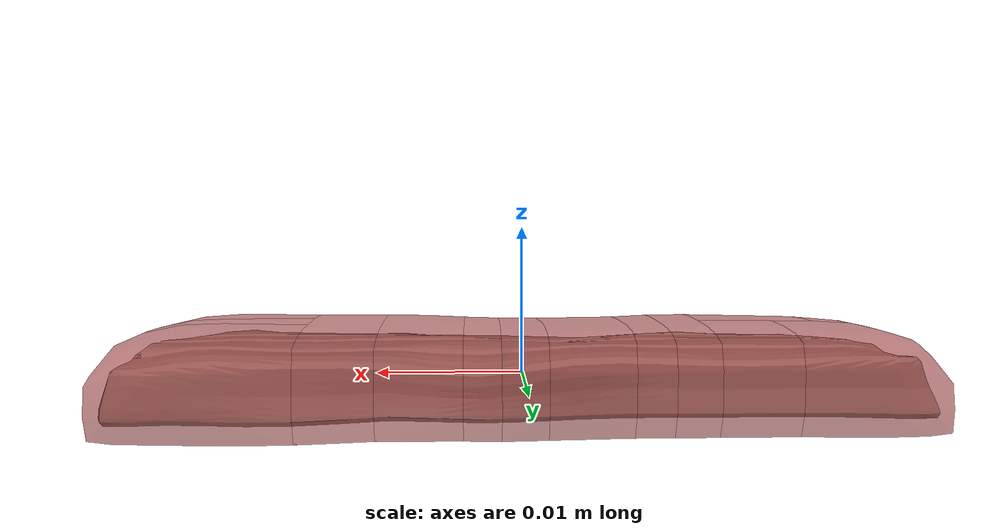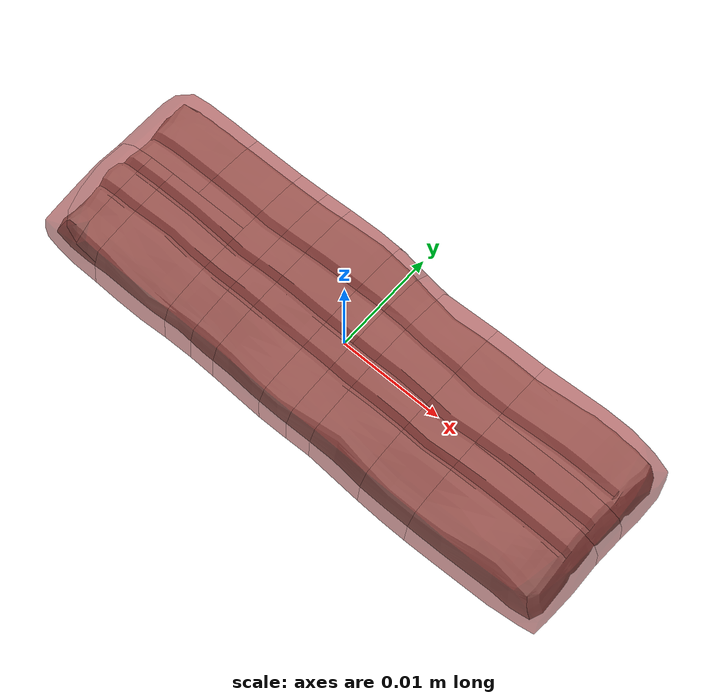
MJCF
<mujoco model="model">
  <compiler angle="radian"/>
  <asset>
    <mesh file="visual/CreamCheese008.obj" name="CreamCheese008_vis"/>
    <texture file="visual/T_BC001.png" name="CreamCheese008_material" type="2d"/>
    <material name="CreamCheese008_material" rgba="1 1 1 1.0" texture="CreamCheese008_material" shininess="-35.000003814697266" specular="0.3103448502657381"/>
    <mesh file="collision/CreamCheese008004.obj" name="CreamCheese008004_mesh"/>
    <mesh file="collision/CreamCheese008007.obj" name="CreamCheese008007_mesh"/>
    <mesh file="collision/CreamCheese008002.obj" name="CreamCheese008002_mesh"/>
    <mesh file="collision/CreamCheese008012.obj" name="CreamCheese008012_mesh"/>
    <mesh file="collision/CreamCheese008011.obj" name="CreamCheese008011_mesh"/>
    <mesh file="collision/CreamCheese008008.obj" name="CreamCheese008008_mesh"/>
    <mesh file="collision/CreamCheese008016.obj" name="CreamCheese008016_mesh"/>
    <mesh file="collision/CreamCheese008014.obj" name="CreamCheese008014_mesh"/>
    <mesh file="collision/CreamCheese008010.obj" name="CreamCheese008010_mesh"/>
    <mesh file="collision/CreamCheese008003.obj" name="CreamCheese008003_mesh"/>
    <mesh file="collision/CreamCheese008001.obj" name="CreamCheese008001_mesh"/>
    <mesh file="collision/CreamCheese008015.obj" name="CreamCheese008015_mesh"/>
    <mesh file="collision/CreamCheese008005.obj" name="CreamCheese008005_mesh"/>
    <mesh file="collision/CreamCheese008009.obj" name="CreamCheese008009_mesh"/>
    <mesh file="collision/CreamCheese008006.obj" name="CreamCheese008006_mesh"/>
    <mesh file="collision/CreamCheese008013.obj" name="CreamCheese008013_mesh"/>
  </asset>
  <default>
    <default class="visual">
      <geom conaffinity="0" contype="0" group="1" type="mesh"/>
    </default>
    <default class="collision">
      <geom group="0" rgba="0.5 0 0 0.5"/>
    </default>
    <default class="spawn">
      <geom group="0" rgba="1 1 1 0.5" contype="0" conaffinity="0"/>
      <site group="0" rgba="1 1 1 0.5"/>
    </default>
    <default class="region">
      <geom group="1" conaffinity="0" contype="0" rgba="0 1 0 0" mass="0"/>
    </default>
  </default>
  <worldbody>
    <body>
      <body name="object">
        <geom mesh="CreamCheese008_vis" type="mesh" solimp="0.998 0.998 0.001" solref="0.001 1" density="100" friction="0.95 0.3 0.1" class="visual" material="CreamCheese008_material"/>
        <geom mesh="CreamCheese008004_mesh" type="mesh" class="collision"/>
        <geom mesh="CreamCheese008007_mesh" type="mesh" class="collision"/>
        <geom mesh="CreamCheese008002_mesh" type="mesh" class="collision"/>
        <geom mesh="CreamCheese008012_mesh" type="mesh" class="collision"/>
        <geom mesh="CreamCheese008011_mesh" type="mesh" class="collision"/>
        <geom mesh="CreamCheese008008_mesh" type="mesh" class="collision"/>
        <geom mesh="CreamCheese008016_mesh" type="mesh" class="collision"/>
        <geom mesh="CreamCheese008014_mesh" type="mesh" class="collision"/>
        <geom mesh="CreamCheese008010_mesh" type="mesh" class="collision"/>
        <geom mesh="CreamCheese008003_mesh" type="mesh" class="collision"/>
        <geom mesh="CreamCheese008001_mesh" type="mesh" class="collision"/>
        <geom mesh="CreamCheese008015_mesh" type="mesh" class="collision"/>
        <geom mesh="CreamCheese008005_mesh" type="mesh" class="collision"/>
        <geom mesh="CreamCheese008009_mesh" type="mesh" class="collision"/>
        <geom mesh="CreamCheese008006_mesh" type="mesh" class="collision"/>
        <geom mesh="CreamCheese008013_mesh" type="mesh" class="collision"/>
        <geom class="region" name="reg_bbox" type="box" pos="8.40400000000005e-05 -4.947000000000024e-05 3.1734999999999966e-05" size="0.02736641 0.009319589999999999 0.0037261050000000004"/>
      </body>
    </body>
  </worldbody>
  <actuator/>
</mujoco>
